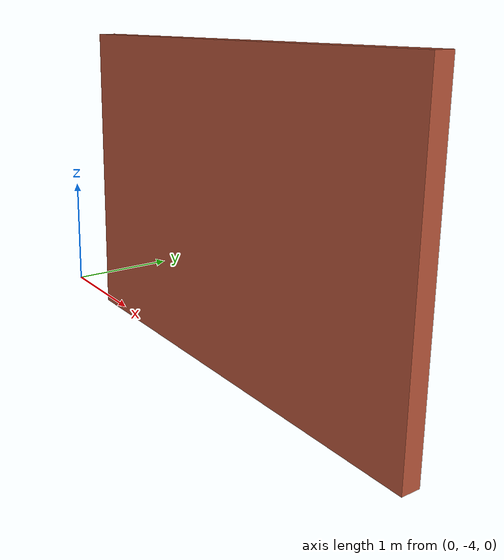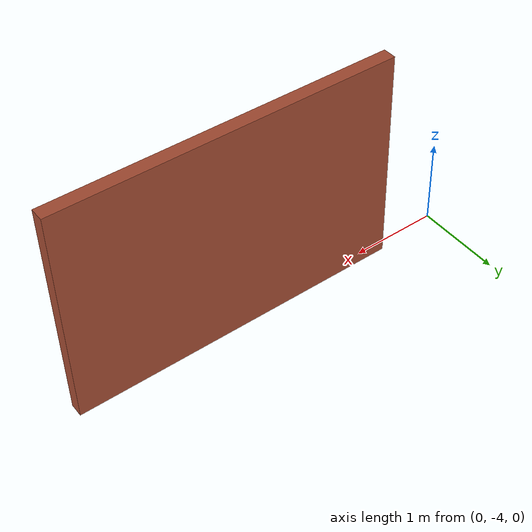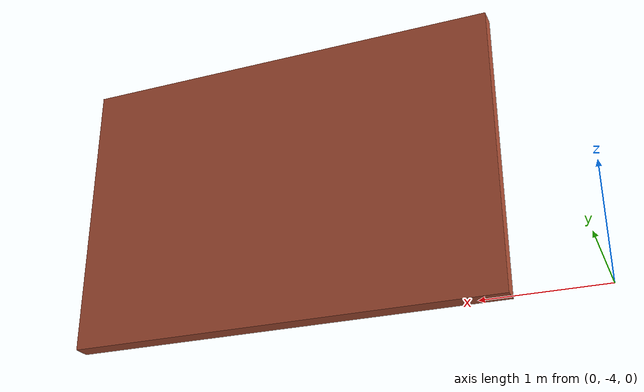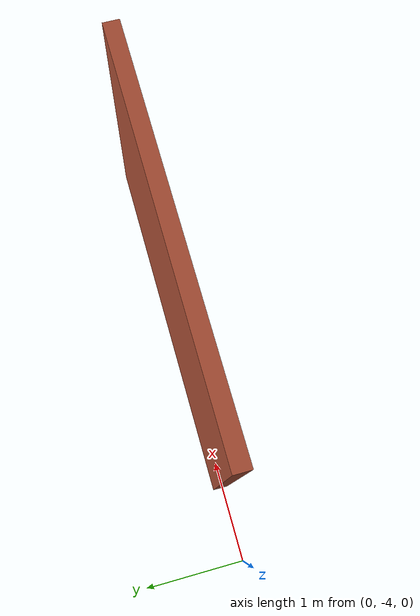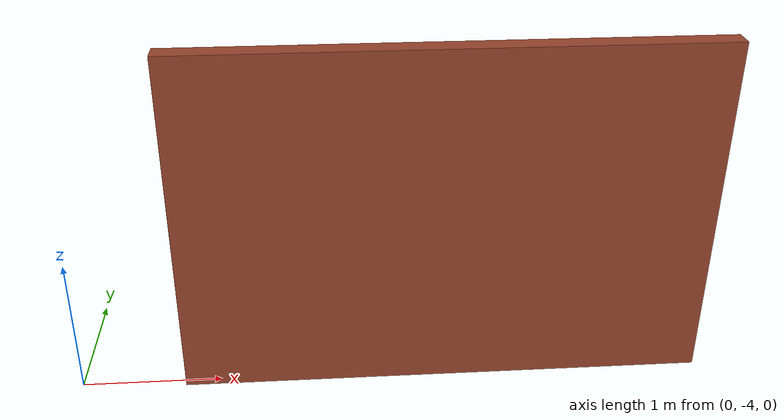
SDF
<?xml version='1.0'?>
<sdf version='1.7'>
  <model name='bricks'>
    <pose>2.2475 -2.0275 0 0 -0 0</pose>
    <link name='Wall_0'>
      <collision name='Wall_0_Collision'>
        <geometry>
          <box>
            <size>3.75 0.15 2.5</size>
          </box>
        </geometry>
        <pose>0 0 1.25 0 -0 0</pose>
      </collision>
      <visual name='Wall_0_Visual'>
        <pose>0 0 1.25 0 -0 0</pose>
        <geometry>
          <box>
            <size>3.75 0.15 2.5</size>
          </box>
        </geometry>
        <material>
          <script>
            <uri>file://media/materials/scripts/gazebo.material</uri>
            <name>Gazebo/Bricks</name>
          </script>
          <ambient>1 1 1 1</ambient>
        </material>
        <meta>
          <layer>0</layer>
        </meta>
      </visual>
      <pose>0.3725 -1.9525 0 0 -0 3.14159</pose>
    </link>
    <static>1</static>
  </model>
</sdf>
